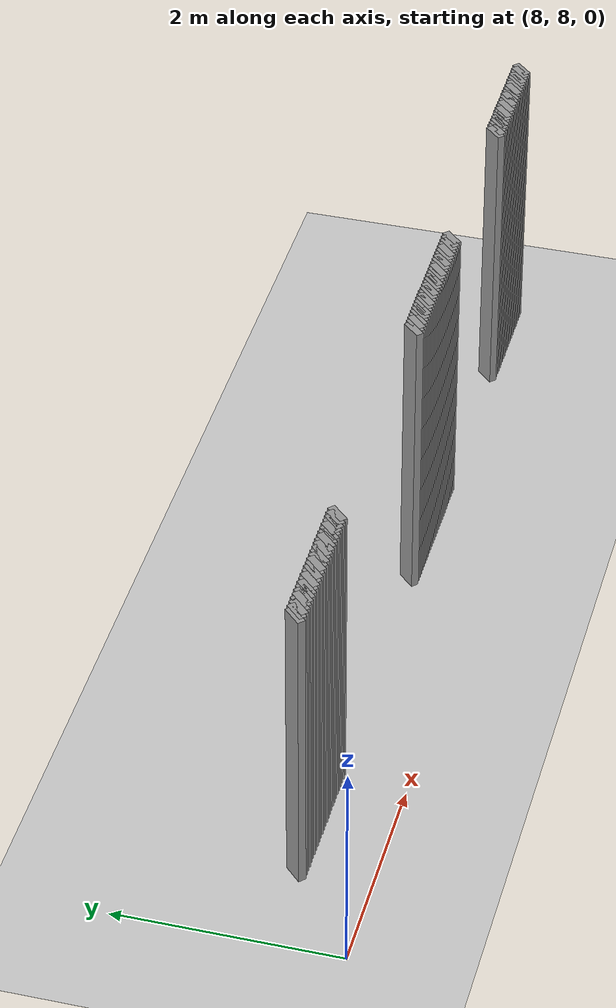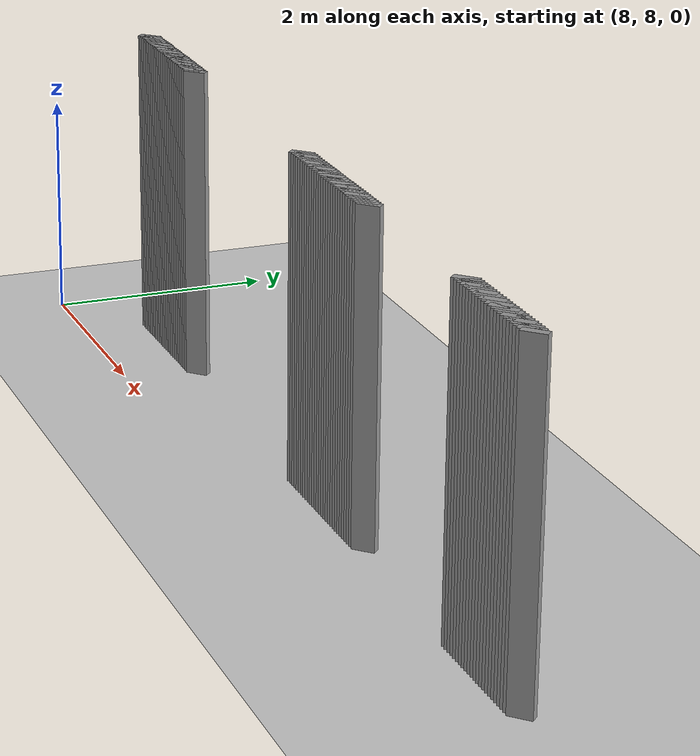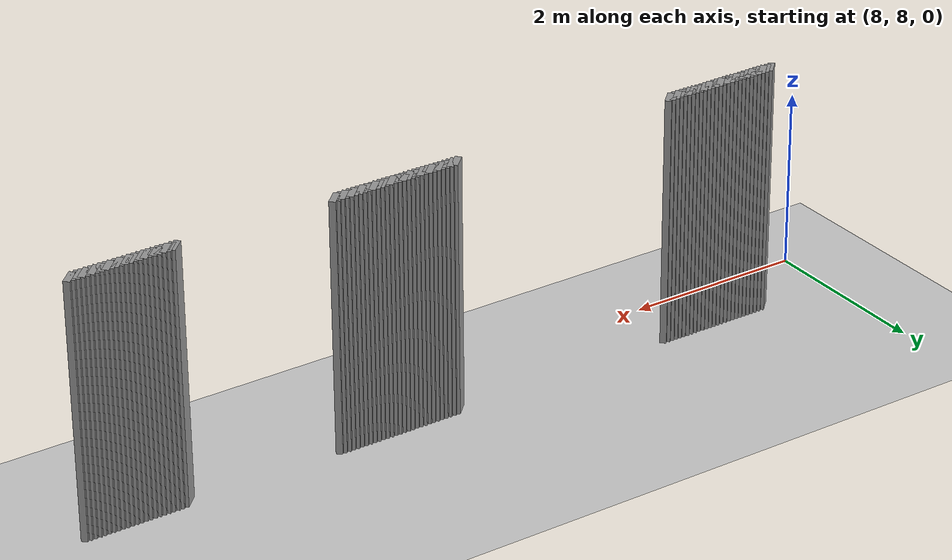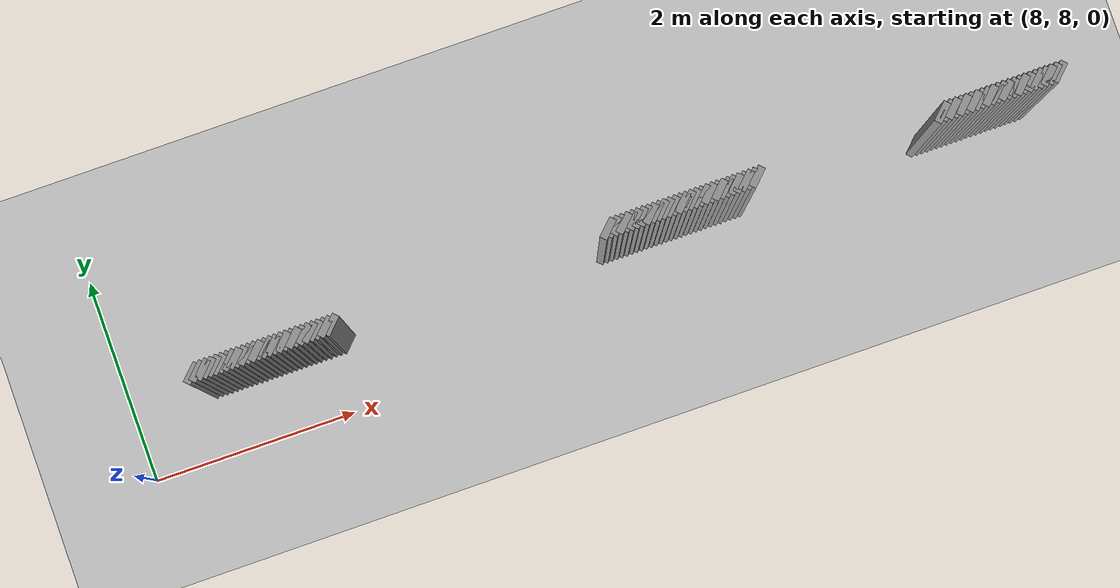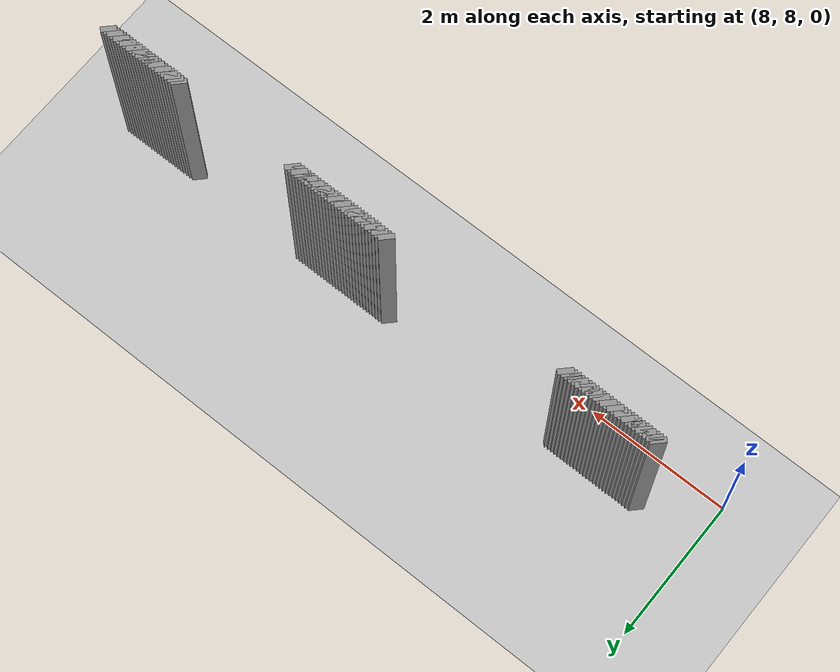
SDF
<sdf version="1.5">
 <world name="default">
  <include><uri>model://ground_plane</uri></include>
  <include><uri>model://sun</uri></include>
  <model name="grey_wall_3702">
   <static>1</static>
   <link name="link">
    <pose>8.85 8.65  1.4 0 0 -0.785398163397</pose>
    <collision name="collision"><geometry><box><size>0.0707106781187 .2  2.8</size></box></geometry></collision>
    <visual name="visual">
     <cast_shadows>0</cast_shadows>
     <geometry><box><size>0.0707106781187 .2  2.8</size></box></geometry>
     <material>
      <script>
       <uri>model://grey_wall/materials/scripts</uri>
       <uri>model://grey_wall/materials/textures</uri>
       <name>vrc/grey_wall</name>
      </script>
     </material>
    </visual>
   </link>
  </model>
  <model name="grey_wall_3703">
   <static>1</static>
   <link name="link">
    <pose>8.9 8.65  1.4 0 0 -0.785398163397</pose>
    <collision name="collision"><geometry><box><size>0.0707106781187 .2  2.8</size></box></geometry></collision>
    <visual name="visual">
     <cast_shadows>0</cast_shadows>
     <geometry><box><size>0.0707106781187 .2  2.8</size></box></geometry>
     <material>
      <script>
       <uri>model://grey_wall/materials/scripts</uri>
       <uri>model://grey_wall/materials/textures</uri>
       <name>vrc/grey_wall</name>
      </script>
     </material>
    </visual>
   </link>
  </model>
  <model name="grey_wall_3704">
   <static>1</static>
   <link name="link">
    <pose>8.95 8.65  1.4 0 0 -0.785398163397</pose>
    <collision name="collision"><geometry><box><size>0.0707106781187 .2  2.8</size></box></geometry></collision>
    <visual name="visual">
     <cast_shadows>0</cast_shadows>
     <geometry><box><size>0.0707106781187 .2  2.8</size></box></geometry>
     <material>
      <script>
       <uri>model://grey_wall/materials/scripts</uri>
       <uri>model://grey_wall/materials/textures</uri>
       <name>vrc/grey_wall</name>
      </script>
     </material>
    </visual>
   </link>
  </model>
  <model name="grey_wall_3705">
   <static>1</static>
   <link name="link">
    <pose>9.0 8.65  1.4 0 0 -0.785398163397</pose>
    <collision name="collision"><geometry><box><size>0.0707106781187 .2  2.8</size></box></geometry></collision>
    <visual name="visual">
     <cast_shadows>0</cast_shadows>
     <geometry><box><size>0.0707106781187 .2  2.8</size></box></geometry>
     <material>
      <script>
       <uri>model://grey_wall/materials/scripts</uri>
       <uri>model://grey_wall/materials/textures</uri>
       <name>vrc/grey_wall</name>
      </script>
     </material>
    </visual>
   </link>
  </model>
  <model name="grey_wall_3706">
   <static>1</static>
   <link name="link">
    <pose>9.05 8.65  1.4 0 0 -0.785398163397</pose>
    <collision name="collision"><geometry><box><size>0.0707106781187 .2  2.8</size></box></geometry></collision>
    <visual name="visual">
     <cast_shadows>0</cast_shadows>
     <geometry><box><size>0.0707106781187 .2  2.8</size></box></geometry>
     <material>
      <script>
       <uri>model://grey_wall/materials/scripts</uri>
       <uri>model://grey_wall/materials/textures</uri>
       <name>vrc/grey_wall</name>
      </script>
     </material>
    </visual>
   </link>
  </model>
  <model name="grey_wall_3707">
   <static>1</static>
   <link name="link">
    <pose>9.1 8.65  1.4 0 0 -0.785398163397</pose>
    <collision name="collision"><geometry><box><size>0.0707106781187 .2  2.8</size></box></geometry></collision>
    <visual name="visual">
     <cast_shadows>0</cast_shadows>
     <geometry><box><size>0.0707106781187 .2  2.8</size></box></geometry>
     <material>
      <script>
       <uri>model://grey_wall/materials/scripts</uri>
       <uri>model://grey_wall/materials/textures</uri>
       <name>vrc/grey_wall</name>
      </script>
     </material>
    </visual>
   </link>
  </model>
  <model name="grey_wall_3708">
   <static>1</static>
   <link name="link">
    <pose>9.15 8.65  1.4 0 0 -0.785398163397</pose>
    <collision name="collision"><geometry><box><size>0.0707106781187 .2  2.8</size></box></geometry></collision>
    <visual name="visual">
     <cast_shadows>0</cast_shadows>
     <geometry><box><size>0.0707106781187 .2  2.8</size></box></geometry>
     <material>
      <script>
       <uri>model://grey_wall/materials/scripts</uri>
       <uri>model://grey_wall/materials/textures</uri>
       <name>vrc/grey_wall</name>
      </script>
     </material>
    </visual>
   </link>
  </model>
  <model name="grey_wall_3709">
   <static>1</static>
   <link name="link">
    <pose>9.2 8.65  1.4 0 0 -0.785398163397</pose>
    <collision name="collision"><geometry><box><size>0.0707106781187 .2  2.8</size></box></geometry></collision>
    <visual name="visual">
     <cast_shadows>0</cast_shadows>
     <geometry><box><size>0.0707106781187 .2  2.8</size></box></geometry>
     <material>
      <script>
       <uri>model://grey_wall/materials/scripts</uri>
       <uri>model://grey_wall/materials/textures</uri>
       <name>vrc/grey_wall</name>
      </script>
     </material>
    </visual>
   </link>
  </model>
  <model name="grey_wall_3710">
   <static>1</static>
   <link name="link">
    <pose>9.25 8.65  1.4 0 0 -0.785398163397</pose>
    <collision name="collision"><geometry><box><size>0.0707106781187 .2  2.8</size></box></geometry></collision>
    <visual name="visual">
     <cast_shadows>0</cast_shadows>
     <geometry><box><size>0.0707106781187 .2  2.8</size></box></geometry>
     <material>
      <script>
       <uri>model://grey_wall/materials/scripts</uri>
       <uri>model://grey_wall/materials/textures</uri>
       <name>vrc/grey_wall</name>
      </script>
     </material>
    </visual>
   </link>
  </model>
  <model name="grey_wall_3711">
   <static>1</static>
   <link name="link">
    <pose>9.3 8.65  1.4 0 0 -0.785398163397</pose>
    <collision name="collision"><geometry><box><size>0.0707106781187 .2  2.8</size></box></geometry></collision>
    <visual name="visual">
     <cast_shadows>0</cast_shadows>
     <geometry><box><size>0.0707106781187 .2  2.8</size></box></geometry>
     <material>
      <script>
       <uri>model://grey_wall/materials/scripts</uri>
       <uri>model://grey_wall/materials/textures</uri>
       <name>vrc/grey_wall</name>
      </script>
     </material>
    </visual>
   </link>
  </model>
  <model name="grey_wall_3712">
   <static>1</static>
   <link name="link">
    <pose>9.35 8.65  1.4 0 0 -0.785398163397</pose>
    <collision name="collision"><geometry><box><size>0.0707106781187 .2  2.8</size></box></geometry></collision>
    <visual name="visual">
     <cast_shadows>0</cast_shadows>
     <geometry><box><size>0.0707106781187 .2  2.8</size></box></geometry>
     <material>
      <script>
       <uri>model://grey_wall/materials/scripts</uri>
       <uri>model://grey_wall/materials/textures</uri>
       <name>vrc/grey_wall</name>
      </script>
     </material>
    </visual>
   </link>
  </model>
  <model name="grey_wall_3713">
   <static>1</static>
   <link name="link">
    <pose>9.4 8.65  1.4 0 0 -0.785398163397</pose>
    <collision name="collision"><geometry><box><size>0.0707106781187 .2  2.8</size></box></geometry></collision>
    <visual name="visual">
     <cast_shadows>0</cast_shadows>
     <geometry><box><size>0.0707106781187 .2  2.8</size></box></geometry>
     <material>
      <script>
       <uri>model://grey_wall/materials/scripts</uri>
       <uri>model://grey_wall/materials/textures</uri>
       <name>vrc/grey_wall</name>
      </script>
     </material>
    </visual>
   </link>
  </model>
  <model name="grey_wall_3714">
   <static>1</static>
   <link name="link">
    <pose>9.45 8.65  1.4 0 0 -0.785398163397</pose>
    <collision name="collision"><geometry><box><size>0.0707106781187 .2  2.8</size></box></geometry></collision>
    <visual name="visual">
     <cast_shadows>0</cast_shadows>
     <geometry><box><size>0.0707106781187 .2  2.8</size></box></geometry>
     <material>
      <script>
       <uri>model://grey_wall/materials/scripts</uri>
       <uri>model://grey_wall/materials/textures</uri>
       <name>vrc/grey_wall</name>
      </script>
     </material>
    </visual>
   </link>
  </model>
  <model name="grey_wall_3715">
   <static>1</static>
   <link name="link">
    <pose>9.5 8.65  1.4 0 0 -0.785398163397</pose>
    <collision name="collision"><geometry><box><size>0.0707106781187 .2  2.8</size></box></geometry></collision>
    <visual name="visual">
     <cast_shadows>0</cast_shadows>
     <geometry><box><size>0.0707106781187 .2  2.8</size></box></geometry>
     <material>
      <script>
       <uri>model://grey_wall/materials/scripts</uri>
       <uri>model://grey_wall/materials/textures</uri>
       <name>vrc/grey_wall</name>
      </script>
     </material>
    </visual>
   </link>
  </model>
  <model name="grey_wall_3716">
   <static>1</static>
   <link name="link">
    <pose>9.55 8.65  1.4 0 0 -0.785398163397</pose>
    <collision name="collision"><geometry><box><size>0.0707106781187 .2  2.8</size></box></geometry></collision>
    <visual name="visual">
     <cast_shadows>0</cast_shadows>
     <geometry><box><size>0.0707106781187 .2  2.8</size></box></geometry>
     <material>
      <script>
       <uri>model://grey_wall/materials/scripts</uri>
       <uri>model://grey_wall/materials/textures</uri>
       <name>vrc/grey_wall</name>
      </script>
     </material>
    </visual>
   </link>
  </model>
  <model name="grey_wall_3717">
   <static>1</static>
   <link name="link">
    <pose>9.6 8.65  1.4 0 0 -0.785398163397</pose>
    <collision name="collision"><geometry><box><size>0.0707106781187 .2  2.8</size></box></geometry></collision>
    <visual name="visual">
     <cast_shadows>0</cast_shadows>
     <geometry><box><size>0.0707106781187 .2  2.8</size></box></geometry>
     <material>
      <script>
       <uri>model://grey_wall/materials/scripts</uri>
       <uri>model://grey_wall/materials/textures</uri>
       <name>vrc/grey_wall</name>
      </script>
     </material>
    </visual>
   </link>
  </model>
  <model name="grey_wall_3718">
   <static>1</static>
   <link name="link">
    <pose>9.65 8.65  1.4 0 0 -0.785398163397</pose>
    <collision name="collision"><geometry><box><size>0.0707106781187 .2  2.8</size></box></geometry></collision>
    <visual name="visual">
     <cast_shadows>0</cast_shadows>
     <geometry><box><size>0.0707106781187 .2  2.8</size></box></geometry>
     <material>
      <script>
       <uri>model://grey_wall/materials/scripts</uri>
       <uri>model://grey_wall/materials/textures</uri>
       <name>vrc/grey_wall</name>
      </script>
     </material>
    </visual>
   </link>
  </model>
  <model name="grey_wall_3719">
   <static>1</static>
   <link name="link">
    <pose>9.7 8.65  1.4 0 0 -0.785398163397</pose>
    <collision name="collision"><geometry><box><size>0.0707106781187 .2  2.8</size></box></geometry></collision>
    <visual name="visual">
     <cast_shadows>0</cast_shadows>
     <geometry><box><size>0.0707106781187 .2  2.8</size></box></geometry>
     <material>
      <script>
       <uri>model://grey_wall/materials/scripts</uri>
       <uri>model://grey_wall/materials/textures</uri>
       <name>vrc/grey_wall</name>
      </script>
     </material>
    </visual>
   </link>
  </model>
  <model name="grey_wall_3720">
   <static>1</static>
   <link name="link">
    <pose>9.75 8.65  1.4 0 0 -0.785398163397</pose>
    <collision name="collision"><geometry><box><size>0.0707106781187 .2  2.8</size></box></geometry></collision>
    <visual name="visual">
     <cast_shadows>0</cast_shadows>
     <geometry><box><size>0.0707106781187 .2  2.8</size></box></geometry>
     <material>
      <script>
       <uri>model://grey_wall/materials/scripts</uri>
       <uri>model://grey_wall/materials/textures</uri>
       <name>vrc/grey_wall</name>
      </script>
     </material>
    </visual>
   </link>
  </model>
  <model name="grey_wall_3721">
   <static>1</static>
   <link name="link">
    <pose>9.8 8.65  1.4 0 0 -0.785398163397</pose>
    <collision name="collision"><geometry><box><size>0.0707106781187 .2  2.8</size></box></geometry></collision>
    <visual name="visual">
     <cast_shadows>0</cast_shadows>
     <geometry><box><size>0.0707106781187 .2  2.8</size></box></geometry>
     <material>
      <script>
       <uri>model://grey_wall/materials/scripts</uri>
       <uri>model://grey_wall/materials/textures</uri>
       <name>vrc/grey_wall</name>
      </script>
     </material>
    </visual>
   </link>
  </model>
  <model name="grey_wall_3722">
   <static>1</static>
   <link name="link">
    <pose>9.85 8.65  1.4 0 0 -0.785398163397</pose>
    <collision name="collision"><geometry><box><size>0.0707106781187 .2  2.8</size></box></geometry></collision>
    <visual name="visual">
     <cast_shadows>0</cast_shadows>
     <geometry><box><size>0.0707106781187 .2  2.8</size></box></geometry>
     <material>
      <script>
       <uri>model://grey_wall/materials/scripts</uri>
       <uri>model://grey_wall/materials/textures</uri>
       <name>vrc/grey_wall</name>
      </script>
     </material>
    </visual>
   </link>
  </model>
  <model name="grey_wall_3723">
   <static>1</static>
   <link name="link">
    <pose>9.9 8.65  1.4 0 0 -0.785398163397</pose>
    <collision name="collision"><geometry><box><size>0.0707106781187 .2  2.8</size></box></geometry></collision>
    <visual name="visual">
     <cast_shadows>0</cast_shadows>
     <geometry><box><size>0.0707106781187 .2  2.8</size></box></geometry>
     <material>
      <script>
       <uri>model://grey_wall/materials/scripts</uri>
       <uri>model://grey_wall/materials/textures</uri>
       <name>vrc/grey_wall</name>
      </script>
     </material>
    </visual>
   </link>
  </model>
  <model name="grey_wall_3724">
   <static>1</static>
   <link name="link">
    <pose>9.95 8.65  1.4 0 0 -0.785398163397</pose>
    <collision name="collision"><geometry><box><size>0.0707106781187 .2  2.8</size></box></geometry></collision>
    <visual name="visual">
     <cast_shadows>0</cast_shadows>
     <geometry><box><size>0.0707106781187 .2  2.8</size></box></geometry>
     <material>
      <script>
       <uri>model://grey_wall/materials/scripts</uri>
       <uri>model://grey_wall/materials/textures</uri>
       <name>vrc/grey_wall</name>
      </script>
     </material>
    </visual>
   </link>
  </model>
  <model name="grey_wall_3725">
   <static>1</static>
   <link name="link">
    <pose>10.0 8.65  1.4 0 0 -0.785398163397</pose>
    <collision name="collision"><geometry><box><size>0.0707106781187 .2  2.8</size></box></geometry></collision>
    <visual name="visual">
     <cast_shadows>0</cast_shadows>
     <geometry><box><size>0.0707106781187 .2  2.8</size></box></geometry>
     <material>
      <script>
       <uri>model://grey_wall/materials/scripts</uri>
       <uri>model://grey_wall/materials/textures</uri>
       <name>vrc/grey_wall</name>
      </script>
     </material>
    </visual>
   </link>
  </model>
  <model name="grey_wall_3726">
   <static>1</static>
   <link name="link">
    <pose>10.05 8.65  1.4 0 0 -0.785398163397</pose>
    <collision name="collision"><geometry><box><size>0.0707106781187 .2  2.8</size></box></geometry></collision>
    <visual name="visual">
     <cast_shadows>0</cast_shadows>
     <geometry><box><size>0.0707106781187 .2  2.8</size></box></geometry>
     <material>
      <script>
       <uri>model://grey_wall/materials/scripts</uri>
       <uri>model://grey_wall/materials/textures</uri>
       <name>vrc/grey_wall</name>
      </script>
     </material>
    </visual>
   </link>
  </model>
  <model name="grey_wall_3727">
   <static>1</static>
   <link name="link">
    <pose>10.1 8.65  1.4 0 0 -0.785398163397</pose>
    <collision name="collision"><geometry><box><size>0.0707106781187 .2  2.8</size></box></geometry></collision>
    <visual name="visual">
     <cast_shadows>0</cast_shadows>
     <geometry><box><size>0.0707106781187 .2  2.8</size></box></geometry>
     <material>
      <script>
       <uri>model://grey_wall/materials/scripts</uri>
       <uri>model://grey_wall/materials/textures</uri>
       <name>vrc/grey_wall</name>
      </script>
     </material>
    </visual>
   </link>
  </model>
  <model name="grey_wall_3728">
   <static>1</static>
   <link name="link">
    <pose>10.15 8.65  1.4 0 0 -0.785398163397</pose>
    <collision name="collision"><geometry><box><size>0.0707106781187 .2  2.8</size></box></geometry></collision>
    <visual name="visual">
     <cast_shadows>0</cast_shadows>
     <geometry><box><size>0.0707106781187 .2  2.8</size></box></geometry>
     <material>
      <script>
       <uri>model://grey_wall/materials/scripts</uri>
       <uri>model://grey_wall/materials/textures</uri>
       <name>vrc/grey_wall</name>
      </script>
     </material>
    </visual>
   </link>
  </model>
  <model name="grey_wall_3729">
   <static>1</static>
   <link name="link">
    <pose>12.75 8.65  1.4 0 0 -0.785398163397</pose>
    <collision name="collision"><geometry><box><size>0.0707106781187 .2  2.8</size></box></geometry></collision>
    <visual name="visual">
     <cast_shadows>0</cast_shadows>
     <geometry><box><size>0.0707106781187 .2  2.8</size></box></geometry>
     <material>
      <script>
       <uri>model://grey_wall/materials/scripts</uri>
       <uri>model://grey_wall/materials/textures</uri>
       <name>vrc/grey_wall</name>
      </script>
     </material>
    </visual>
   </link>
  </model>
  <model name="grey_wall_3730">
   <static>1</static>
   <link name="link">
    <pose>12.8 8.65  1.4 0 0 -0.785398163397</pose>
    <collision name="collision"><geometry><box><size>0.0707106781187 .2  2.8</size></box></geometry></collision>
    <visual name="visual">
     <cast_shadows>0</cast_shadows>
     <geometry><box><size>0.0707106781187 .2  2.8</size></box></geometry>
     <material>
      <script>
       <uri>model://grey_wall/materials/scripts</uri>
       <uri>model://grey_wall/materials/textures</uri>
       <name>vrc/grey_wall</name>
      </script>
     </material>
    </visual>
   </link>
  </model>
  <model name="grey_wall_3731">
   <static>1</static>
   <link name="link">
    <pose>12.85 8.65  1.4 0 0 -0.785398163397</pose>
    <collision name="collision"><geometry><box><size>0.0707106781187 .2  2.8</size></box></geometry></collision>
    <visual name="visual">
     <cast_shadows>0</cast_shadows>
     <geometry><box><size>0.0707106781187 .2  2.8</size></box></geometry>
     <material>
      <script>
       <uri>model://grey_wall/materials/scripts</uri>
       <uri>model://grey_wall/materials/textures</uri>
       <name>vrc/grey_wall</name>
      </script>
     </material>
    </visual>
   </link>
  </model>
  <model name="grey_wall_3732">
   <static>1</static>
   <link name="link">
    <pose>12.9 8.65  1.4 0 0 -0.785398163397</pose>
    <collision name="collision"><geometry><box><size>0.0707106781187 .2  2.8</size></box></geometry></collision>
    <visual name="visual">
     <cast_shadows>0</cast_shadows>
     <geometry><box><size>0.0707106781187 .2  2.8</size></box></geometry>
     <material>
      <script>
       <uri>model://grey_wall/materials/scripts</uri>
       <uri>model://grey_wall/materials/textures</uri>
       <name>vrc/grey_wall</name>
      </script>
     </material>
    </visual>
   </link>
  </model>
  <model name="grey_wall_3733">
   <static>1</static>
   <link name="link">
    <pose>12.95 8.65  1.4 0 0 -0.785398163397</pose>
    <collision name="collision"><geometry><box><size>0.0707106781187 .2  2.8</size></box></geometry></collision>
    <visual name="visual">
     <cast_shadows>0</cast_shadows>
     <geometry><box><size>0.0707106781187 .2  2.8</size></box></geometry>
     <material>
      <script>
       <uri>model://grey_wall/materials/scripts</uri>
       <uri>model://grey_wall/materials/textures</uri>
       <name>vrc/grey_wall</name>
      </script>
     </material>
    </visual>
   </link>
  </model>
  <model name="grey_wall_3734">
   <static>1</static>
   <link name="link">
    <pose>13.0 8.65  1.4 0 0 -0.785398163397</pose>
    <collision name="collision"><geometry><box><size>0.0707106781187 .2  2.8</size></box></geometry></collision>
    <visual name="visual">
     <cast_shadows>0</cast_shadows>
     <geometry><box><size>0.0707106781187 .2  2.8</size></box></geometry>
     <material>
      <script>
       <uri>model://grey_wall/materials/scripts</uri>
       <uri>model://grey_wall/materials/textures</uri>
       <name>vrc/grey_wall</name>
      </script>
     </material>
    </visual>
   </link>
  </model>
  <model name="grey_wall_3735">
   <static>1</static>
   <link name="link">
    <pose>13.05 8.65  1.4 0 0 -0.785398163397</pose>
    <collision name="collision"><geometry><box><size>0.0707106781187 .2  2.8</size></box></geometry></collision>
    <visual name="visual">
     <cast_shadows>0</cast_shadows>
     <geometry><box><size>0.0707106781187 .2  2.8</size></box></geometry>
     <material>
      <script>
       <uri>model://grey_wall/materials/scripts</uri>
       <uri>model://grey_wall/materials/textures</uri>
       <name>vrc/grey_wall</name>
      </script>
     </material>
    </visual>
   </link>
  </model>
  <model name="grey_wall_3736">
   <static>1</static>
   <link name="link">
    <pose>13.1 8.65  1.4 0 0 -0.785398163397</pose>
    <collision name="collision"><geometry><box><size>0.0707106781187 .2  2.8</size></box></geometry></collision>
    <visual name="visual">
     <cast_shadows>0</cast_shadows>
     <geometry><box><size>0.0707106781187 .2  2.8</size></box></geometry>
     <material>
      <script>
       <uri>model://grey_wall/materials/scripts</uri>
       <uri>model://grey_wall/materials/textures</uri>
       <name>vrc/grey_wall</name>
      </script>
     </material>
    </visual>
   </link>
  </model>
  <model name="grey_wall_3737">
   <static>1</static>
   <link name="link">
    <pose>13.15 8.65  1.4 0 0 -0.785398163397</pose>
    <collision name="collision"><geometry><box><size>0.0707106781187 .2  2.8</size></box></geometry></collision>
    <visual name="visual">
     <cast_shadows>0</cast_shadows>
     <geometry><box><size>0.0707106781187 .2  2.8</size></box></geometry>
     <material>
      <script>
       <uri>model://grey_wall/materials/scripts</uri>
       <uri>model://grey_wall/materials/textures</uri>
       <name>vrc/grey_wall</name>
      </script>
     </material>
    </visual>
   </link>
  </model>
  <model name="grey_wall_3738">
   <static>1</static>
   <link name="link">
    <pose>13.2 8.65  1.4 0 0 -0.785398163397</pose>
    <collision name="collision"><geometry><box><size>0.0707106781187 .2  2.8</size></box></geometry></collision>
    <visual name="visual">
     <cast_shadows>0</cast_shadows>
     <geometry><box><size>0.0707106781187 .2  2.8</size></box></geometry>
     <material>
      <script>
       <uri>model://grey_wall/materials/scripts</uri>
       <uri>model://grey_wall/materials/textures</uri>
       <name>vrc/grey_wall</name>
      </script>
     </material>
    </visual>
   </link>
  </model>
  <model name="grey_wall_3739">
   <static>1</static>
   <link name="link">
    <pose>13.25 8.65  1.4 0 0 -0.785398163397</pose>
    <collision name="collision"><geometry><box><size>0.0707106781187 .2  2.8</size></box></geometry></collision>
    <visual name="visual">
     <cast_shadows>0</cast_shadows>
     <geometry><box><size>0.0707106781187 .2  2.8</size></box></geometry>
     <material>
      <script>
       <uri>model://grey_wall/materials/scripts</uri>
       <uri>model://grey_wall/materials/textures</uri>
       <name>vrc/grey_wall</name>
      </script>
     </material>
    </visual>
   </link>
  </model>
  <model name="grey_wall_3740">
   <static>1</static>
   <link name="link">
    <pose>13.3 8.65  1.4 0 0 -0.785398163397</pose>
    <collision name="collision"><geometry><box><size>0.0707106781187 .2  2.8</size></box></geometry></collision>
    <visual name="visual">
     <cast_shadows>0</cast_shadows>
     <geometry><box><size>0.0707106781187 .2  2.8</size></box></geometry>
     <material>
      <script>
       <uri>model://grey_wall/materials/scripts</uri>
       <uri>model://grey_wall/materials/textures</uri>
       <name>vrc/grey_wall</name>
      </script>
     </material>
    </visual>
   </link>
  </model>
  <model name="grey_wall_3741">
   <static>1</static>
   <link name="link">
    <pose>13.35 8.65  1.4 0 0 -0.785398163397</pose>
    <collision name="collision"><geometry><box><size>0.0707106781187 .2  2.8</size></box></geometry></collision>
    <visual name="visual">
     <cast_shadows>0</cast_shadows>
     <geometry><box><size>0.0707106781187 .2  2.8</size></box></geometry>
     <material>
      <script>
       <uri>model://grey_wall/materials/scripts</uri>
       <uri>model://grey_wall/materials/textures</uri>
       <name>vrc/grey_wall</name>
      </script>
     </material>
    </visual>
   </link>
  </model>
  <model name="grey_wall_3742">
   <static>1</static>
   <link name="link">
    <pose>13.4 8.65  1.4 0 0 -0.785398163397</pose>
    <collision name="collision"><geometry><box><size>0.0707106781187 .2  2.8</size></box></geometry></collision>
    <visual name="visual">
     <cast_shadows>0</cast_shadows>
     <geometry><box><size>0.0707106781187 .2  2.8</size></box></geometry>
     <material>
      <script>
       <uri>model://grey_wall/materials/scripts</uri>
       <uri>model://grey_wall/materials/textures</uri>
       <name>vrc/grey_wall</name>
      </script>
     </material>
    </visual>
   </link>
  </model>
  <model name="grey_wall_3743">
   <static>1</static>
   <link name="link">
    <pose>13.45 8.65  1.4 0 0 -0.785398163397</pose>
    <collision name="collision"><geometry><box><size>0.0707106781187 .2  2.8</size></box></geometry></collision>
    <visual name="visual">
     <cast_shadows>0</cast_shadows>
     <geometry><box><size>0.0707106781187 .2  2.8</size></box></geometry>
     <material>
      <script>
       <uri>model://grey_wall/materials/scripts</uri>
       <uri>model://grey_wall/materials/textures</uri>
       <name>vrc/grey_wall</name>
      </script>
     </material>
    </visual>
   </link>
  </model>
  <model name="grey_wall_3744">
   <static>1</static>
   <link name="link">
    <pose>13.5 8.65  1.4 0 0 -0.785398163397</pose>
    <collision name="collision"><geometry><box><size>0.0707106781187 .2  2.8</size></box></geometry></collision>
    <visual name="visual">
     <cast_shadows>0</cast_shadows>
     <geometry><box><size>0.0707106781187 .2  2.8</size></box></geometry>
     <material>
      <script>
       <uri>model://grey_wall/materials/scripts</uri>
       <uri>model://grey_wall/materials/textures</uri>
       <name>vrc/grey_wall</name>
      </script>
     </material>
    </visual>
   </link>
  </model>
  <model name="grey_wall_3745">
   <static>1</static>
   <link name="link">
    <pose>13.55 8.65  1.4 0 0 -0.785398163397</pose>
    <collision name="collision"><geometry><box><size>0.0707106781187 .2  2.8</size></box></geometry></collision>
    <visual name="visual">
     <cast_shadows>0</cast_shadows>
     <geometry><box><size>0.0707106781187 .2  2.8</size></box></geometry>
     <material>
      <script>
       <uri>model://grey_wall/materials/scripts</uri>
       <uri>model://grey_wall/materials/textures</uri>
       <name>vrc/grey_wall</name>
      </script>
     </material>
    </visual>
   </link>
  </model>
  <model name="grey_wall_3746">
   <static>1</static>
   <link name="link">
    <pose>13.6 8.65  1.4 0 0 -0.785398163397</pose>
    <collision name="collision"><geometry><box><size>0.0707106781187 .2  2.8</size></box></geometry></collision>
    <visual name="visual">
     <cast_shadows>0</cast_shadows>
     <geometry><box><size>0.0707106781187 .2  2.8</size></box></geometry>
     <material>
      <script>
       <uri>model://grey_wall/materials/scripts</uri>
       <uri>model://grey_wall/materials/textures</uri>
       <name>vrc/grey_wall</name>
      </script>
     </material>
    </visual>
   </link>
  </model>
  <model name="grey_wall_3747">
   <static>1</static>
   <link name="link">
    <pose>13.65 8.65  1.4 0 0 -0.785398163397</pose>
    <collision name="collision"><geometry><box><size>0.0707106781187 .2  2.8</size></box></geometry></collision>
    <visual name="visual">
     <cast_shadows>0</cast_shadows>
     <geometry><box><size>0.0707106781187 .2  2.8</size></box></geometry>
     <material>
      <script>
       <uri>model://grey_wall/materials/scripts</uri>
       <uri>model://grey_wall/materials/textures</uri>
       <name>vrc/grey_wall</name>
      </script>
     </material>
    </visual>
   </link>
  </model>
  <model name="grey_wall_3748">
   <static>1</static>
   <link name="link">
    <pose>13.7 8.65  1.4 0 0 -0.785398163397</pose>
    <collision name="collision"><geometry><box><size>0.0707106781187 .2  2.8</size></box></geometry></collision>
    <visual name="visual">
     <cast_shadows>0</cast_shadows>
     <geometry><box><size>0.0707106781187 .2  2.8</size></box></geometry>
     <material>
      <script>
       <uri>model://grey_wall/materials/scripts</uri>
       <uri>model://grey_wall/materials/textures</uri>
       <name>vrc/grey_wall</name>
      </script>
     </material>
    </visual>
   </link>
  </model>
  <model name="grey_wall_3749">
   <static>1</static>
   <link name="link">
    <pose>13.75 8.65  1.4 0 0 -0.785398163397</pose>
    <collision name="collision"><geometry><box><size>0.0707106781187 .2  2.8</size></box></geometry></collision>
    <visual name="visual">
     <cast_shadows>0</cast_shadows>
     <geometry><box><size>0.0707106781187 .2  2.8</size></box></geometry>
     <material>
      <script>
       <uri>model://grey_wall/materials/scripts</uri>
       <uri>model://grey_wall/materials/textures</uri>
       <name>vrc/grey_wall</name>
      </script>
     </material>
    </visual>
   </link>
  </model>
  <model name="grey_wall_3750">
   <static>1</static>
   <link name="link">
    <pose>13.8 8.65  1.4 0 0 -0.785398163397</pose>
    <collision name="collision"><geometry><box><size>0.0707106781187 .2  2.8</size></box></geometry></collision>
    <visual name="visual">
     <cast_shadows>0</cast_shadows>
     <geometry><box><size>0.0707106781187 .2  2.8</size></box></geometry>
     <material>
      <script>
       <uri>model://grey_wall/materials/scripts</uri>
       <uri>model://grey_wall/materials/textures</uri>
       <name>vrc/grey_wall</name>
      </script>
     </material>
    </visual>
   </link>
  </model>
  <model name="grey_wall_3751">
   <static>1</static>
   <link name="link">
    <pose>13.85 8.65  1.4 0 0 -0.785398163397</pose>
    <collision name="collision"><geometry><box><size>0.0707106781187 .2  2.8</size></box></geometry></collision>
    <visual name="visual">
     <cast_shadows>0</cast_shadows>
     <geometry><box><size>0.0707106781187 .2  2.8</size></box></geometry>
     <material>
      <script>
       <uri>model://grey_wall/materials/scripts</uri>
       <uri>model://grey_wall/materials/textures</uri>
       <name>vrc/grey_wall</name>
      </script>
     </material>
    </visual>
   </link>
  </model>
  <model name="grey_wall_3752">
   <static>1</static>
   <link name="link">
    <pose>13.9 8.65  1.4 0 0 -0.785398163397</pose>
    <collision name="collision"><geometry><box><size>0.0707106781187 .2  2.8</size></box></geometry></collision>
    <visual name="visual">
     <cast_shadows>0</cast_shadows>
     <geometry><box><size>0.0707106781187 .2  2.8</size></box></geometry>
     <material>
      <script>
       <uri>model://grey_wall/materials/scripts</uri>
       <uri>model://grey_wall/materials/textures</uri>
       <name>vrc/grey_wall</name>
      </script>
     </material>
    </visual>
   </link>
  </model>
  <model name="grey_wall_3753">
   <static>1</static>
   <link name="link">
    <pose>13.95 8.65  1.4 0 0 -0.785398163397</pose>
    <collision name="collision"><geometry><box><size>0.0707106781187 .2  2.8</size></box></geometry></collision>
    <visual name="visual">
     <cast_shadows>0</cast_shadows>
     <geometry><box><size>0.0707106781187 .2  2.8</size></box></geometry>
     <material>
      <script>
       <uri>model://grey_wall/materials/scripts</uri>
       <uri>model://grey_wall/materials/textures</uri>
       <name>vrc/grey_wall</name>
      </script>
     </material>
    </visual>
   </link>
  </model>
  <model name="grey_wall_3754">
   <static>1</static>
   <link name="link">
    <pose>14.0 8.65  1.4 0 0 -0.785398163397</pose>
    <collision name="collision"><geometry><box><size>0.0707106781187 .2  2.8</size></box></geometry></collision>
    <visual name="visual">
     <cast_shadows>0</cast_shadows>
     <geometry><box><size>0.0707106781187 .2  2.8</size></box></geometry>
     <material>
      <script>
       <uri>model://grey_wall/materials/scripts</uri>
       <uri>model://grey_wall/materials/textures</uri>
       <name>vrc/grey_wall</name>
      </script>
     </material>
    </visual>
   </link>
  </model>
  <model name="grey_wall_3755">
   <static>1</static>
   <link name="link">
    <pose>14.05 8.65  1.4 0 0 -0.785398163397</pose>
    <collision name="collision"><geometry><box><size>0.0707106781187 .2  2.8</size></box></geometry></collision>
    <visual name="visual">
     <cast_shadows>0</cast_shadows>
     <geometry><box><size>0.0707106781187 .2  2.8</size></box></geometry>
     <material>
      <script>
       <uri>model://grey_wall/materials/scripts</uri>
       <uri>model://grey_wall/materials/textures</uri>
       <name>vrc/grey_wall</name>
      </script>
     </material>
    </visual>
   </link>
  </model>
  <model name="grey_wall_3756">
   <static>1</static>
   <link name="link">
    <pose>14.1 8.65  1.4 0 0 -0.785398163397</pose>
    <collision name="collision"><geometry><box><size>0.0707106781187 .2  2.8</size></box></geometry></collision>
    <visual name="visual">
     <cast_shadows>0</cast_shadows>
     <geometry><box><size>0.0707106781187 .2  2.8</size></box></geometry>
     <material>
      <script>
       <uri>model://grey_wall/materials/scripts</uri>
       <uri>model://grey_wall/materials/textures</uri>
       <name>vrc/grey_wall</name>
      </script>
     </material>
    </visual>
   </link>
  </model>
  <model name="grey_wall_3757">
   <static>1</static>
   <link name="link">
    <pose>14.15 8.65  1.4 0 0 -0.785398163397</pose>
    <collision name="collision"><geometry><box><size>0.0707106781187 .2  2.8</size></box></geometry></collision>
    <visual name="visual">
     <cast_shadows>0</cast_shadows>
     <geometry><box><size>0.0707106781187 .2  2.8</size></box></geometry>
     <material>
      <script>
       <uri>model://grey_wall/materials/scripts</uri>
       <uri>model://grey_wall/materials/textures</uri>
       <name>vrc/grey_wall</name>
      </script>
     </material>
    </visual>
   </link>
  </model>
  <model name="grey_wall_3758">
   <static>1</static>
   <link name="link">
    <pose>15.9 8.65  1.4 0 0 -0.785398163397</pose>
    <collision name="collision"><geometry><box><size>0.0707106781187 .2  2.8</size></box></geometry></collision>
    <visual name="visual">
     <cast_shadows>0</cast_shadows>
     <geometry><box><size>0.0707106781187 .2  2.8</size></box></geometry>
     <material>
      <script>
       <uri>model://grey_wall/materials/scripts</uri>
       <uri>model://grey_wall/materials/textures</uri>
       <name>vrc/grey_wall</name>
      </script>
     </material>
    </visual>
   </link>
  </model>
  <model name="grey_wall_3759">
   <static>1</static>
   <link name="link">
    <pose>15.95 8.65  1.4 0 0 -0.785398163397</pose>
    <collision name="collision"><geometry><box><size>0.0707106781187 .2  2.8</size></box></geometry></collision>
    <visual name="visual">
     <cast_shadows>0</cast_shadows>
     <geometry><box><size>0.0707106781187 .2  2.8</size></box></geometry>
     <material>
      <script>
       <uri>model://grey_wall/materials/scripts</uri>
       <uri>model://grey_wall/materials/textures</uri>
       <name>vrc/grey_wall</name>
      </script>
     </material>
    </visual>
   </link>
  </model>
  <model name="grey_wall_3760">
   <static>1</static>
   <link name="link">
    <pose>16.0 8.65  1.4 0 0 -0.785398163397</pose>
    <collision name="collision"><geometry><box><size>0.0707106781187 .2  2.8</size></box></geometry></collision>
    <visual name="visual">
     <cast_shadows>0</cast_shadows>
     <geometry><box><size>0.0707106781187 .2  2.8</size></box></geometry>
     <material>
      <script>
       <uri>model://grey_wall/materials/scripts</uri>
       <uri>model://grey_wall/materials/textures</uri>
       <name>vrc/grey_wall</name>
      </script>
     </material>
    </visual>
   </link>
  </model>
  <model name="grey_wall_3761">
   <static>1</static>
   <link name="link">
    <pose>16.05 8.65  1.4 0 0 -0.785398163397</pose>
    <collision name="collision"><geometry><box><size>0.0707106781187 .2  2.8</size></box></geometry></collision>
    <visual name="visual">
     <cast_shadows>0</cast_shadows>
     <geometry><box><size>0.0707106781187 .2  2.8</size></box></geometry>
     <material>
      <script>
       <uri>model://grey_wall/materials/scripts</uri>
       <uri>model://grey_wall/materials/textures</uri>
       <name>vrc/grey_wall</name>
      </script>
     </material>
    </visual>
   </link>
  </model>
  <model name="grey_wall_3762">
   <static>1</static>
   <link name="link">
    <pose>16.1 8.65  1.4 0 0 -0.785398163397</pose>
    <collision name="collision"><geometry><box><size>0.0707106781187 .2  2.8</size></box></geometry></collision>
    <visual name="visual">
     <cast_shadows>0</cast_shadows>
     <geometry><box><size>0.0707106781187 .2  2.8</size></box></geometry>
     <material>
      <script>
       <uri>model://grey_wall/materials/scripts</uri>
       <uri>model://grey_wall/materials/textures</uri>
       <name>vrc/grey_wall</name>
      </script>
     </material>
    </visual>
   </link>
  </model>
  <model name="grey_wall_3763">
   <static>1</static>
   <link name="link">
    <pose>16.15 8.65  1.4 0 0 -0.785398163397</pose>
    <collision name="collision"><geometry><box><size>0.0707106781187 .2  2.8</size></box></geometry></collision>
    <visual name="visual">
     <cast_shadows>0</cast_shadows>
     <geometry><box><size>0.0707106781187 .2  2.8</size></box></geometry>
     <material>
      <script>
       <uri>model://grey_wall/materials/scripts</uri>
       <uri>model://grey_wall/materials/textures</uri>
       <name>vrc/grey_wall</name>
      </script>
     </material>
    </visual>
   </link>
  </model>
  <model name="grey_wall_3764">
   <static>1</static>
   <link name="link">
    <pose>16.2 8.65  1.4 0 0 -0.785398163397</pose>
    <collision name="collision"><geometry><box><size>0.0707106781187 .2  2.8</size></box></geometry></collision>
    <visual name="visual">
     <cast_shadows>0</cast_shadows>
     <geometry><box><size>0.0707106781187 .2  2.8</size></box></geometry>
     <material>
      <script>
       <uri>model://grey_wall/materials/scripts</uri>
       <uri>model://grey_wall/materials/textures</uri>
       <name>vrc/grey_wall</name>
      </script>
     </material>
    </visual>
   </link>
  </model>
  <model name="grey_wall_3765">
   <static>1</static>
   <link name="link">
    <pose>16.25 8.65  1.4 0 0 -0.785398163397</pose>
    <collision name="collision"><geometry><box><size>0.0707106781187 .2  2.8</size></box></geometry></collision>
    <visual name="visual">
     <cast_shadows>0</cast_shadows>
     <geometry><box><size>0.0707106781187 .2  2.8</size></box></geometry>
     <material>
      <script>
       <uri>model://grey_wall/materials/scripts</uri>
       <uri>model://grey_wall/materials/textures</uri>
       <name>vrc/grey_wall</name>
      </script>
     </material>
    </visual>
   </link>
  </model>
  <model name="grey_wall_3766">
   <static>1</static>
   <link name="link">
    <pose>16.3 8.65  1.4 0 0 -0.785398163397</pose>
    <collision name="collision"><geometry><box><size>0.0707106781187 .2  2.8</size></box></geometry></collision>
    <visual name="visual">
     <cast_shadows>0</cast_shadows>
     <geometry><box><size>0.0707106781187 .2  2.8</size></box></geometry>
     <material>
      <script>
       <uri>model://grey_wall/materials/scripts</uri>
       <uri>model://grey_wall/materials/textures</uri>
       <name>vrc/grey_wall</name>
      </script>
     </material>
    </visual>
   </link>
  </model>
  <model name="grey_wall_3767">
   <static>1</static>
   <link name="link">
    <pose>16.35 8.65  1.4 0 0 -0.785398163397</pose>
    <collision name="collision"><geometry><box><size>0.0707106781187 .2  2.8</size></box></geometry></collision>
    <visual name="visual">
     <cast_shadows>0</cast_shadows>
     <geometry><box><size>0.0707106781187 .2  2.8</size></box></geometry>
     <material>
      <script>
       <uri>model://grey_wall/materials/scripts</uri>
       <uri>model://grey_wall/materials/textures</uri>
       <name>vrc/grey_wall</name>
      </script>
     </material>
    </visual>
   </link>
  </model>
  <model name="grey_wall_3768">
   <static>1</static>
   <link name="link">
    <pose>16.4 8.65  1.4 0 0 -0.785398163397</pose>
    <collision name="collision"><geometry><box><size>0.0707106781187 .2  2.8</size></box></geometry></collision>
    <visual name="visual">
     <cast_shadows>0</cast_shadows>
     <geometry><box><size>0.0707106781187 .2  2.8</size></box></geometry>
     <material>
      <script>
       <uri>model://grey_wall/materials/scripts</uri>
       <uri>model://grey_wall/materials/textures</uri>
       <name>vrc/grey_wall</name>
      </script>
     </material>
    </visual>
   </link>
  </model>
  <model name="grey_wall_3769">
   <static>1</static>
   <link name="link">
    <pose>16.45 8.65  1.4 0 0 -0.785398163397</pose>
    <collision name="collision"><geometry><box><size>0.0707106781187 .2  2.8</size></box></geometry></collision>
    <visual name="visual">
     <cast_shadows>0</cast_shadows>
     <geometry><box><size>0.0707106781187 .2  2.8</size></box></geometry>
     <material>
      <script>
       <uri>model://grey_wall/materials/scripts</uri>
       <uri>model://grey_wall/materials/textures</uri>
       <name>vrc/grey_wall</name>
      </script>
     </material>
    </visual>
   </link>
  </model>
  <model name="grey_wall_3770">
   <static>1</static>
   <link name="link">
    <pose>16.5 8.65  1.4 0 0 -0.785398163397</pose>
    <collision name="collision"><geometry><box><size>0.0707106781187 .2  2.8</size></box></geometry></collision>
    <visual name="visual">
     <cast_shadows>0</cast_shadows>
     <geometry><box><size>0.0707106781187 .2  2.8</size></box></geometry>
     <material>
      <script>
       <uri>model://grey_wall/materials/scripts</uri>
       <uri>model://grey_wall/materials/textures</uri>
       <name>vrc/grey_wall</name>
      </script>
     </material>
    </visual>
   </link>
  </model>
  <model name="grey_wall_3771">
   <static>1</static>
   <link name="link">
    <pose>16.55 8.65  1.4 0 0 -0.785398163397</pose>
    <collision name="collision"><geometry><box><size>0.0707106781187 .2  2.8</size></box></geometry></collision>
    <visual name="visual">
     <cast_shadows>0</cast_shadows>
     <geometry><box><size>0.0707106781187 .2  2.8</size></box></geometry>
     <material>
      <script>
       <uri>model://grey_wall/materials/scripts</uri>
       <uri>model://grey_wall/materials/textures</uri>
       <name>vrc/grey_wall</name>
      </script>
     </material>
    </visual>
   </link>
  </model>
  <model name="grey_wall_3772">
   <static>1</static>
   <link name="link">
    <pose>16.6 8.65  1.4 0 0 -0.785398163397</pose>
    <collision name="collision"><geometry><box><size>0.0707106781187 .2  2.8</size></box></geometry></collision>
    <visual name="visual">
     <cast_shadows>0</cast_shadows>
     <geometry><box><size>0.0707106781187 .2  2.8</size></box></geometry>
     <material>
      <script>
       <uri>model://grey_wall/materials/scripts</uri>
       <uri>model://grey_wall/materials/textures</uri>
       <name>vrc/grey_wall</name>
      </script>
     </material>
    </visual>
   </link>
  </model>
  <model name="grey_wall_3773">
   <static>1</static>
   <link name="link">
    <pose>16.65 8.65  1.4 0 0 -0.785398163397</pose>
    <collision name="collision"><geometry><box><size>0.0707106781187 .2  2.8</size></box></geometry></collision>
    <visual name="visual">
     <cast_shadows>0</cast_shadows>
     <geometry><box><size>0.0707106781187 .2  2.8</size></box></geometry>
     <material>
      <script>
       <uri>model://grey_wall/materials/scripts</uri>
       <uri>model://grey_wall/materials/textures</uri>
       <name>vrc/grey_wall</name>
      </script>
     </material>
    </visual>
   </link>
  </model>
  <model name="grey_wall_3774">
   <static>1</static>
   <link name="link">
    <pose>16.7 8.65  1.4 0 0 -0.785398163397</pose>
    <collision name="collision"><geometry><box><size>0.0707106781187 .2  2.8</size></box></geometry></collision>
    <visual name="visual">
     <cast_shadows>0</cast_shadows>
     <geometry><box><size>0.0707106781187 .2  2.8</size></box></geometry>
     <material>
      <script>
       <uri>model://grey_wall/materials/scripts</uri>
       <uri>model://grey_wall/materials/textures</uri>
       <name>vrc/grey_wall</name>
      </script>
     </material>
    </visual>
   </link>
  </model>
  <model name="grey_wall_3775">
   <static>1</static>
   <link name="link">
    <pose>16.75 8.65  1.4 0 0 -0.785398163397</pose>
    <collision name="collision"><geometry><box><size>0.0707106781187 .2  2.8</size></box></geometry></collision>
    <visual name="visual">
     <cast_shadows>0</cast_shadows>
     <geometry><box><size>0.0707106781187 .2  2.8</size></box></geometry>
     <material>
      <script>
       <uri>model://grey_wall/materials/scripts</uri>
       <uri>model://grey_wall/materials/textures</uri>
       <name>vrc/grey_wall</name>
      </script>
     </material>
    </visual>
   </link>
  </model>
  <model name="grey_wall_3776">
   <static>1</static>
   <link name="link">
    <pose>16.8 8.65  1.4 0 0 -0.785398163397</pose>
    <collision name="collision"><geometry><box><size>0.0707106781187 .2  2.8</size></box></geometry></collision>
    <visual name="visual">
     <cast_shadows>0</cast_shadows>
     <geometry><box><size>0.0707106781187 .2  2.8</size></box></geometry>
     <material>
      <script>
       <uri>model://grey_wall/materials/scripts</uri>
       <uri>model://grey_wall/materials/textures</uri>
       <name>vrc/grey_wall</name>
      </script>
     </material>
    </visual>
   </link>
  </model>
  <model name="grey_wall_3777">
   <static>1</static>
   <link name="link">
    <pose>16.85 8.65  1.4 0 0 -0.785398163397</pose>
    <collision name="collision"><geometry><box><size>0.0707106781187 .2  2.8</size></box></geometry></collision>
    <visual name="visual">
     <cast_shadows>0</cast_shadows>
     <geometry><box><size>0.0707106781187 .2  2.8</size></box></geometry>
     <material>
      <script>
       <uri>model://grey_wall/materials/scripts</uri>
       <uri>model://grey_wall/materials/textures</uri>
       <name>vrc/grey_wall</name>
      </script>
     </material>
    </visual>
   </link>
  </model>
  <model name="grey_wall_3778">
   <static>1</static>
   <link name="link">
    <pose>16.9 8.65  1.4 0 0 -0.785398163397</pose>
    <collision name="collision"><geometry><box><size>0.0707106781187 .2  2.8</size></box></geometry></collision>
    <visual name="visual">
     <cast_shadows>0</cast_shadows>
     <geometry><box><size>0.0707106781187 .2  2.8</size></box></geometry>
     <material>
      <script>
       <uri>model://grey_wall/materials/scripts</uri>
       <uri>model://grey_wall/materials/textures</uri>
       <name>vrc/grey_wall</name>
      </script>
     </material>
    </visual>
   </link>
  </model>
  <model name="grey_wall_3779">
   <static>1</static>
   <link name="link">
    <pose>16.95 8.65  1.4 0 0 -0.785398163397</pose>
    <collision name="collision"><geometry><box><size>0.0707106781187 .2  2.8</size></box></geometry></collision>
    <visual name="visual">
     <cast_shadows>0</cast_shadows>
     <geometry><box><size>0.0707106781187 .2  2.8</size></box></geometry>
     <material>
      <script>
       <uri>model://grey_wall/materials/scripts</uri>
       <uri>model://grey_wall/materials/textures</uri>
       <name>vrc/grey_wall</name>
      </script>
     </material>
    </visual>
   </link>
  </model>
  <model name="grey_wall_3780">
   <static>1</static>
   <link name="link">
    <pose>17.0 8.65  1.4 0 0 -0.785398163397</pose>
    <collision name="collision"><geometry><box><size>0.0707106781187 .2  2.8</size></box></geometry></collision>
    <visual name="visual">
     <cast_shadows>0</cast_shadows>
     <geometry><box><size>0.0707106781187 .2  2.8</size></box></geometry>
     <material>
      <script>
       <uri>model://grey_wall/materials/scripts</uri>
       <uri>model://grey_wall/materials/textures</uri>
       <name>vrc/grey_wall</name>
      </script>
     </material>
    </visual>
   </link>
  </model>
 </world>
</sdf>
